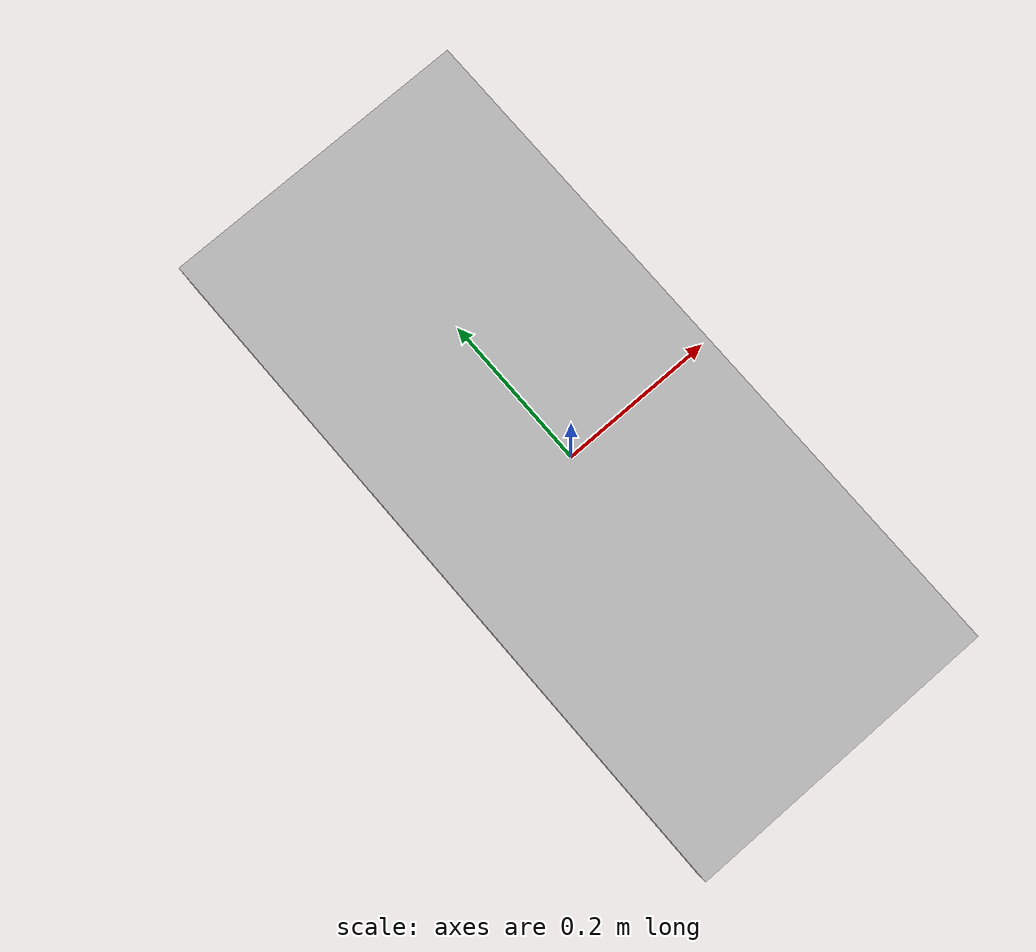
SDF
<?xml version='1.0'?>
<sdf version='1.6'>
  <model name="crosswalk_box">
      <static>true</static>
      <link name='link'>
        <collision name='collision'>
          <geometry>
         <box>
            <size>0.4 0.9 0.1</size>
          </box>
          </geometry>
          <surface>
            <friction>
              <ode>
                <mu>100</mu>
                <mu2>50</mu2>
              </ode>
            </friction>
          </surface>
        </collision>
        <visual name='visual'>
          <cast_shadows>0</cast_shadows>
          <geometry>
         <box>
            <size>0.4 0.9 0.1</size>
          </box>
          </geometry>
          <material>
            <script>
              <uri>model://crosswalk_box/materials/scripts</uri>
              <uri>model://crosswalk_box/materials/textures/</uri>
              <name>crosswalk_box/Image</name>
            </script>
          </material>
        </visual>
      </link>
  </model>
</sdf>
